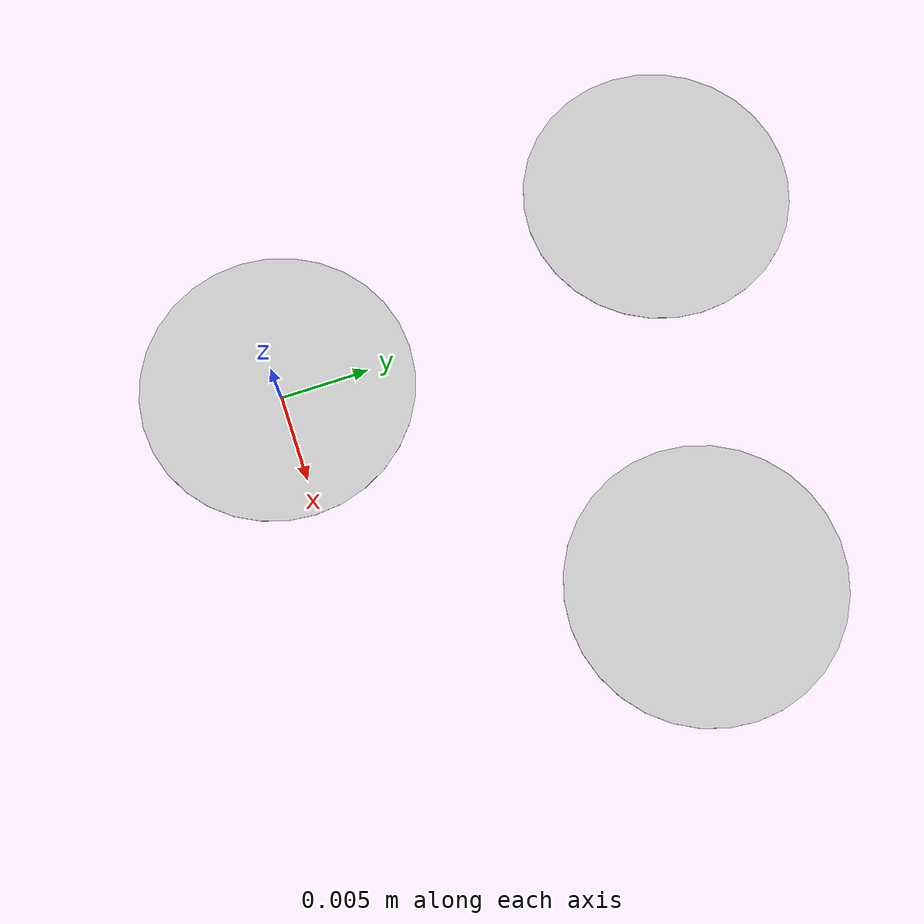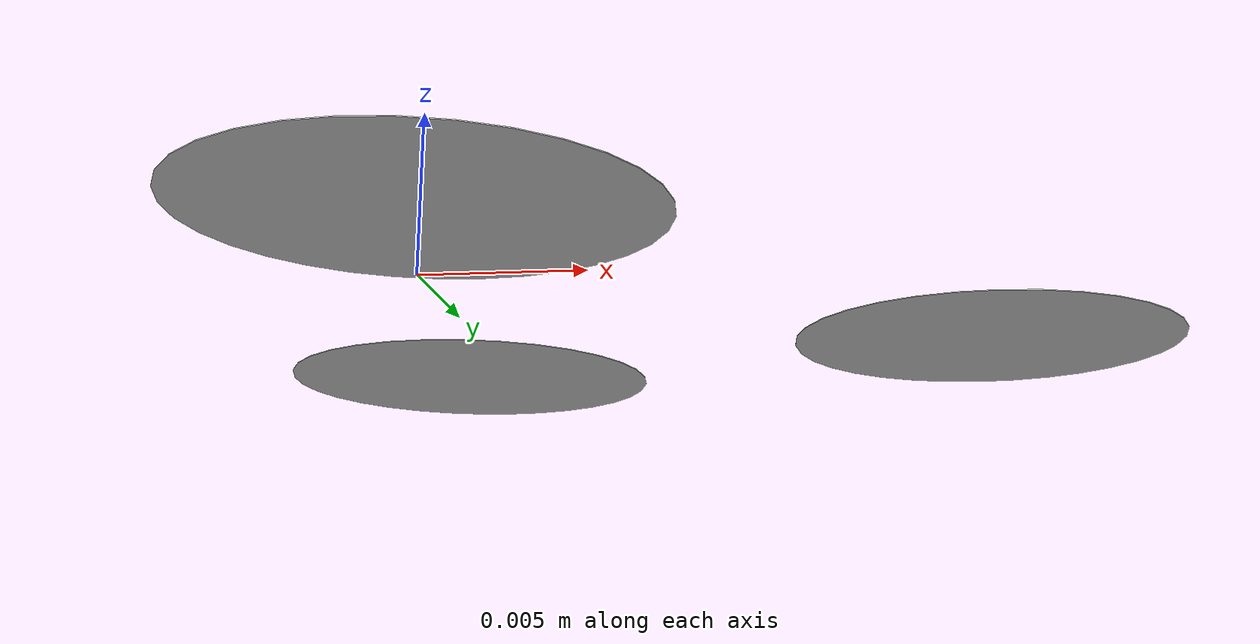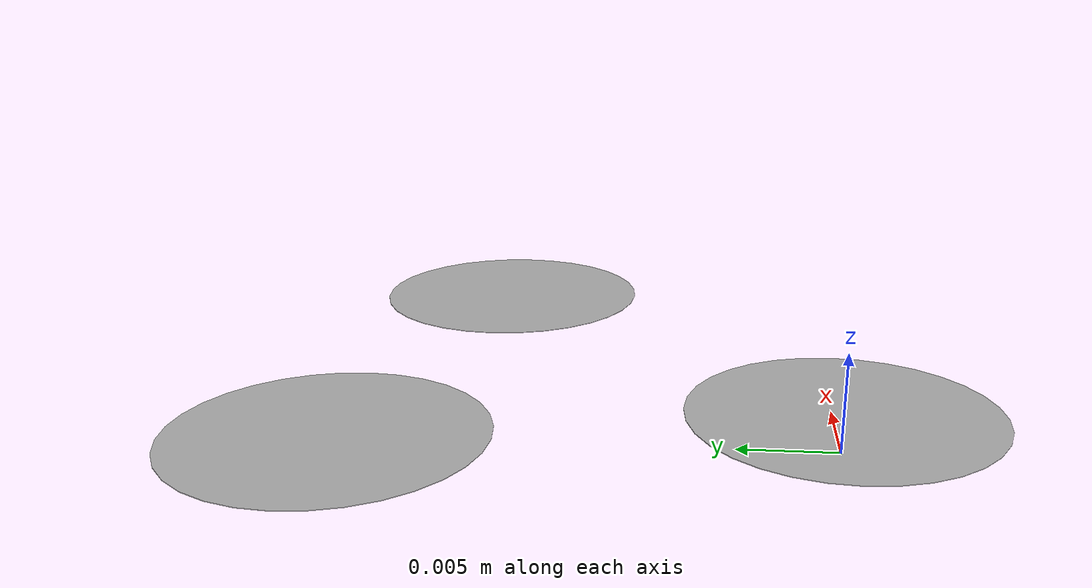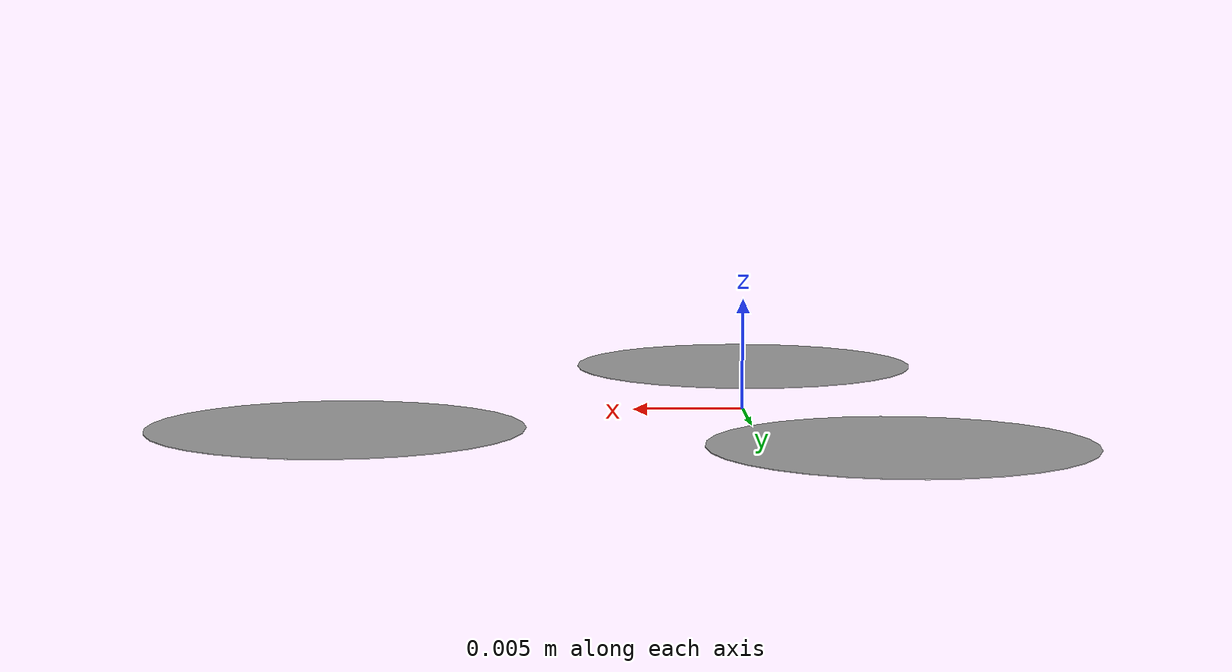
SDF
<?xml version="1.0"?>
<sdf version="1.4">
    <model name="led">
      <pose>0 0 0 0 0 0</pose>
      <static>true</static>
      <link name="link">
        <visual name="visual1">
          <pose>0 0 0.002 1.57 0 0</pose>
          <geometry>
            <mesh>
              <uri>model://led/meshes/led.obj</uri>
              <scale>3 3 3</scale>
            </mesh>
          </geometry>
        </visual>

        <visual name="visual2">
          <pose>-0.004183 0.023498 0.002 1.57 0 0</pose>
          <geometry>
            <mesh>
              <uri>model://led/meshes/led.obj</uri>
              <scale>3 3 3</scale>
            </mesh>
          </geometry>
        </visual>

        <visual name="visual3">
          <pose>0.017569 0.018231 0.002 1.57 0 0</pose>
          <geometry>
            <mesh>
              <uri>model://led/meshes/led.obj</uri>
              <scale>3 3 3</scale>
            </mesh>
          </geometry>
        </visual>
      </link>
    </model>
</sdf>
